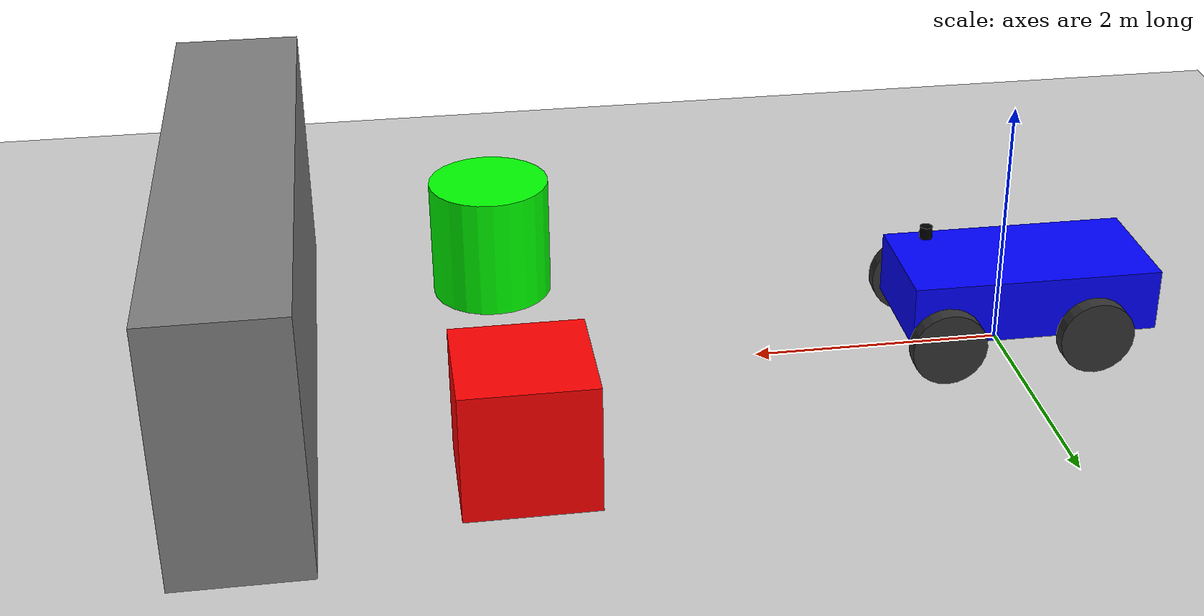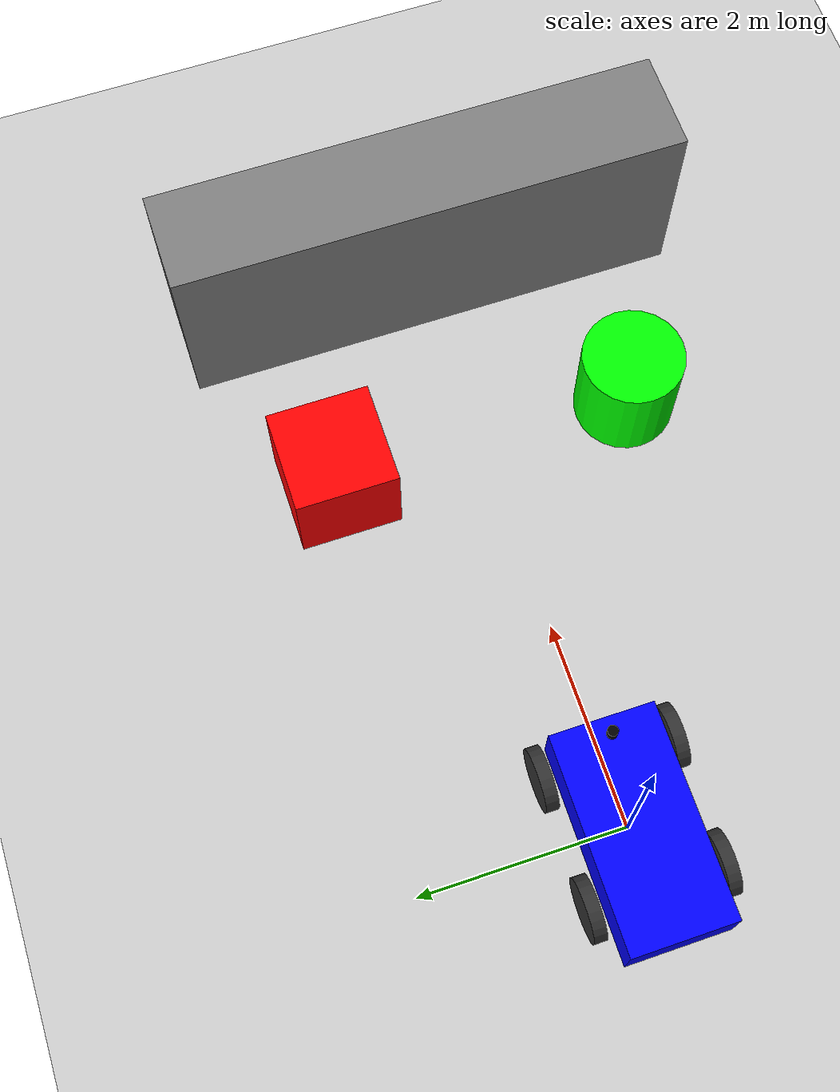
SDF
<?xml version="1.0" ?>
<sdf version="1.8">
    <world name="lab1_world">

        <physics name="1ms" type="ignored">
            <max_step_size>0.001</max_step_size>
            <real_time_factor>1.0</real_time_factor>
        </physics>

        <plugin filename="gz-sim-physics-system" name="gz::sim::systems::Physics">
        </plugin>
        <plugin filename="gz-sim-user-commands-system" name="gz::sim::systems::UserCommands">
        </plugin>
        <plugin filename="gz-sim-scene-broadcaster-system" name="gz::sim::systems::SceneBroadcaster">
        </plugin>
        <plugin filename="gz-sim-sensors-system" name="gz::sim::systems::Sensors">
            <render_engine>ogre2</render_engine>
        </plugin>

        <light type="directional" name="sun">
            <cast_shadows>true</cast_shadows>
            <pose>0 0 10 0 0 0</pose>
            <diffuse>0.8 0.8 0.8 1</diffuse>
            <specular>0.2 0.2 0.2 1</specular>
            <direction>-0.5 0.1 -0.9</direction>
        </light>

        <model name="ground_plane">
            <static>true</static>
            <link name="link">
                <collision name="collision">
                    <geometry>
                        <plane>
                            <normal>0 0 1</normal>
                            <size>100 100</size>
                        </plane>
                    </geometry>
                </collision>
                <visual name="visual">
                    <geometry>
                        <plane>
                            <normal>0 0 1</normal>
                            <size>100 100</size>
                        </plane>
                    </geometry>
                    <material>
                        <ambient>0.8 0.8 0.8 1</ambient>
                        <diffuse>0.8 0.8 0.8 1</diffuse>
                    </material>
                </visual>
            </link>
        </model>

        <model name='vehicle_blue'>
            <pose>0 0 0.325 0 0 0</pose>

            <link name='chassis'>
                <pose>-0.15 0 0.175 0 0 0</pose>
                <inertial>
                    <mass>1.14395</mass>
                    <inertia>
                        <ixx>0.126</ixx>
                        <ixy>0</ixy>
                        <ixz>0</ixz>
                        <iyy>0.416</iyy>
                        <iyz>0</iyz>
                        <izz>0.481</izz>
                    </inertia>
                </inertial>
                <visual name='visual'>
                    <geometry>
                        <box>
                            <size>2.0 1.0 0.5</size>
                        </box>
                    </geometry>
                    <material>
                        <ambient>0.0 0.0 1.0 1</ambient>
                        <diffuse>0.0 0.0 1.0 1</diffuse>
                    </material>
                </visual>
                <collision name='collision'>
                    <geometry>
                        <box>
                            <size>2.0 1.0 0.5</size>
                        </box>
                    </geometry>
                </collision>
            </link>

            <link name='lidar_link'>
                <pose relative_to='chassis'>0.8 0 0.5 0 0 0</pose>
                <inertial>
                    <mass>0.1</mass>
                    <inertia>
                        <ixx>0.000166667</ixx>
                        <iyy>0.000166667</iyy>
                        <izz>0.000166667</izz>
                    </inertia>
                </inertial>
                <visual name='visual'>
                    <geometry>
                        <cylinder>
                            <radius>0.05</radius>
                            <length>0.1</length>
                        </cylinder>
                    </geometry>
                    <material>
                        <ambient>0.0 0.0 0.0 1</ambient>
                        <diffuse>0.0 0.0 0.0 1</diffuse>
                    </material>
                </visual>
                <sensor name='gpu_lidar' type='gpu_lidar'>
                    <topic>lidar</topic>
                    <update_rate>10</update_rate>
                    <lidar>
                        <scan>
                            <horizontal>
                                <samples>640</samples>
                                <resolution>1</resolution>
                                <min_angle>-1.396263</min_angle>
                                <max_angle>1.396263</max_angle>
                            </horizontal>
                        </scan>
                        <range>
                            <min>0.08</min>
                            <max>10.0</max>
                        </range>
                    </lidar>
                    <always_on>1</always_on>
                    <visualize>true</visualize>
                </sensor>
            </link>

            <joint name='lidar_joint' type='fixed'>
                <parent>chassis</parent>
                <child>lidar_link</child>
            </joint>

            <link name='left_wheel_front'>
                <pose>0.6 0.625 -0.025 -1.5707 0 0</pose>
                <inertial>
                    <mass>2</mass>
                    <inertia>
                        <ixx>0.145</ixx>
                        <iyy>0.145</iyy>
                        <izz>0.125</izz>
                    </inertia>
                </inertial>
                <visual name='visual'>
                    <geometry>
                        <cylinder>
                            <radius>0.3</radius>
                            <length>0.125</length>
                        </cylinder>
                    </geometry>
                    <material>
                        <ambient>0.2 0.2 0.2 1</ambient>
                        <diffuse>0.2 0.2 0.2 1</diffuse>
                    </material>
                </visual>
                <collision name='collision'>
                    <geometry>
                        <cylinder>
                            <radius>0.3</radius>
                            <length>0.125</length>
                        </cylinder>
                    </geometry>
                </collision>
            </link>

            <link name='left_wheel_rear'>
                <pose>-0.6 0.625 -0.025 -1.5707 0 0</pose>
                <inertial>
                    <mass>2</mass>
                    <inertia>
                        <ixx>0.145</ixx>
                        <iyy>0.145</iyy>
                        <izz>0.125</izz>
                    </inertia>
                </inertial>
                <visual name='visual'>
                    <geometry>
                        <cylinder>
                            <radius>0.3</radius>
                            <length>0.125</length>
                        </cylinder>
                    </geometry>
                    <material>
                        <ambient>0.2 0.2 0.2 1</ambient>
                        <diffuse>0.2 0.2 0.2 1</diffuse>
                    </material>
                </visual>
                <collision name='collision'>
                    <geometry>
                        <cylinder>
                            <radius>0.3</radius>
                            <length>0.125</length>
                        </cylinder>
                    </geometry>
                </collision>
            </link>

            <link name='right_wheel_front'>
                <pose>0.6 -0.625 -0.025 -1.5707 0 0</pose>
                <inertial>
                    <mass>2</mass>
                    <inertia>
                        <ixx>0.145</ixx>
                        <iyy>0.145</iyy>
                        <izz>0.125</izz>
                    </inertia>
                </inertial>
                <visual name='visual'>
                    <geometry>
                        <cylinder>
                            <radius>0.3</radius>
                            <length>0.125</length>
                        </cylinder>
                    </geometry>
                    <material>
                        <ambient>0.2 0.2 0.2 1</ambient>
                        <diffuse>0.2 0.2 0.2 1</diffuse>
                    </material>
                </visual>
                <collision name='collision'>
                    <geometry>
                        <cylinder>
                            <radius>0.3</radius>
                            <length>0.125</length>
                        </cylinder>
                    </geometry>
                </collision>
            </link>

            <link name='right_wheel_rear'>
                <pose>-0.6 -0.625 -0.025 -1.5707 0 0</pose>
                <inertial>
                    <mass>2</mass>
                    <inertia>
                        <ixx>0.145</ixx>
                        <iyy>0.145</iyy>
                        <izz>0.125</izz>
                    </inertia>
                </inertial>
                <visual name='visual'>
                    <geometry>
                        <cylinder>
                            <radius>0.3</radius>
                            <length>0.125</length>
                        </cylinder>
                    </geometry>
                    <material>
                        <ambient>0.2 0.2 0.2 1</ambient>
                        <diffuse>0.2 0.2 0.2 1</diffuse>
                    </material>
                </visual>
                <collision name='collision'>
                    <geometry>
                        <cylinder>
                            <radius>0.3</radius>
                            <length>0.125</length>
                        </cylinder>
                    </geometry>
                </collision>
            </link>

            <joint name='left_wheel_front_joint' type='revolute'>
                <parent>chassis</parent>
                <child>left_wheel_front</child>
                <axis>
                    <xyz expressed_in='__model__'>0 1 0</xyz>
                    <limit>
                        <lower>-1.79e+308</lower>
                        <upper>1.79e+308</upper>
                    </limit>
                </axis>
            </joint>
            <joint name='left_wheel_rear_joint' type='revolute'>
                <parent>chassis</parent>
                <child>left_wheel_rear</child>
                <axis>
                    <xyz expressed_in='__model__'>0 1 0</xyz>
                    <limit>
                        <lower>-1.79e+308</lower>
                        <upper>1.79e+308</upper>
                    </limit>
                </axis>
            </joint>
            <joint name='right_wheel_front_joint' type='revolute'>
                <parent>chassis</parent>
                <child>right_wheel_front</child>
                <axis>
                    <xyz expressed_in='__model__'>0 1 0</xyz>
                    <limit>
                        <lower>-1.79e+308</lower>
                        <upper>1.79e+308</upper>
                    </limit>
                </axis>
            </joint>
            <joint name='right_wheel_rear_joint' type='revolute'>
                <parent>chassis</parent>
                <child>right_wheel_rear</child>
                <axis>
                    <xyz expressed_in='__model__'>0 1 0</xyz>
                    <limit>
                        <lower>-1.79e+308</lower>
                        <upper>1.79e+308</upper>
                    </limit>
                </axis>
            </joint>

            <plugin filename="gz-sim-diff-drive-system" name="gz::sim::systems::DiffDrive">
                <left_joint>left_wheel_front_joint</left_joint>
                <left_joint>left_wheel_rear_joint</left_joint>
                <right_joint>right_wheel_front_joint</right_joint>
                <right_joint>right_wheel_rear_joint</right_joint>
                <wheel_separation>1.25</wheel_separation>
                <wheel_radius>0.3</wheel_radius>
                <odom_publish_frequency>1</odom_publish_frequency>
                <topic>cmd_vel</topic>
            </plugin>
        </model>

        <model name='red_box'>
            <pose>4 1.5 0.5 0 0 0</pose>
            <static>true</static>
            <link name='link'>
                <visual name='visual'>
                    <geometry>
                        <box>
                            <size>1 1 1</size>
                        </box>
                    </geometry>
                    <material>
                        <ambient>1 0 0 1</ambient>
                        <diffuse>1 0 0 1</diffuse>
                    </material>
                </visual>
                <collision name='collision'>
                    <geometry>
                        <box>
                            <size>1 1 1</size>
                        </box>
                    </geometry>
                </collision>
            </link>
        </model>

        <model name='green_cylinder'>
            <pose>4 -1.5 0.5 0 0 0</pose>
            <static>true</static>
            <link name='link'>
                <visual name='visual'>
                    <geometry>
                        <cylinder>
                            <radius>0.5</radius>
                            <length>1</length>
                        </cylinder>
                    </geometry>
                    <material>
                        <ambient>0 1 0 1</ambient>
                        <diffuse>0 1 0 1</diffuse>
                    </material>
                </visual>
                <collision name='collision'>
                    <geometry>
                        <cylinder>
                            <radius>0.5</radius>
                            <length>1</length>
                        </cylinder>
                    </geometry>
                </collision>
            </link>
        </model>

        <model name='gray_wall'>
            <pose>6 0 1 0 0 0</pose>
            <static>true</static>
            <link name='link'>
                <visual name='visual'>
                    <geometry>
                        <box>
                            <size>1 5 2</size>
                        </box>
                    </geometry>
                    <material>
                        <ambient>0.5 0.5 0.5 1</ambient>
                        <diffuse>0.5 0.5 0.5 1</diffuse>
                    </material>
                </visual>
                <collision name='collision'>
                    <geometry>
                        <box>
                            <size>1 5 2</size>
                        </box>
                    </geometry>
                </collision>
            </link>
        </model>

    </world>
</sdf>
